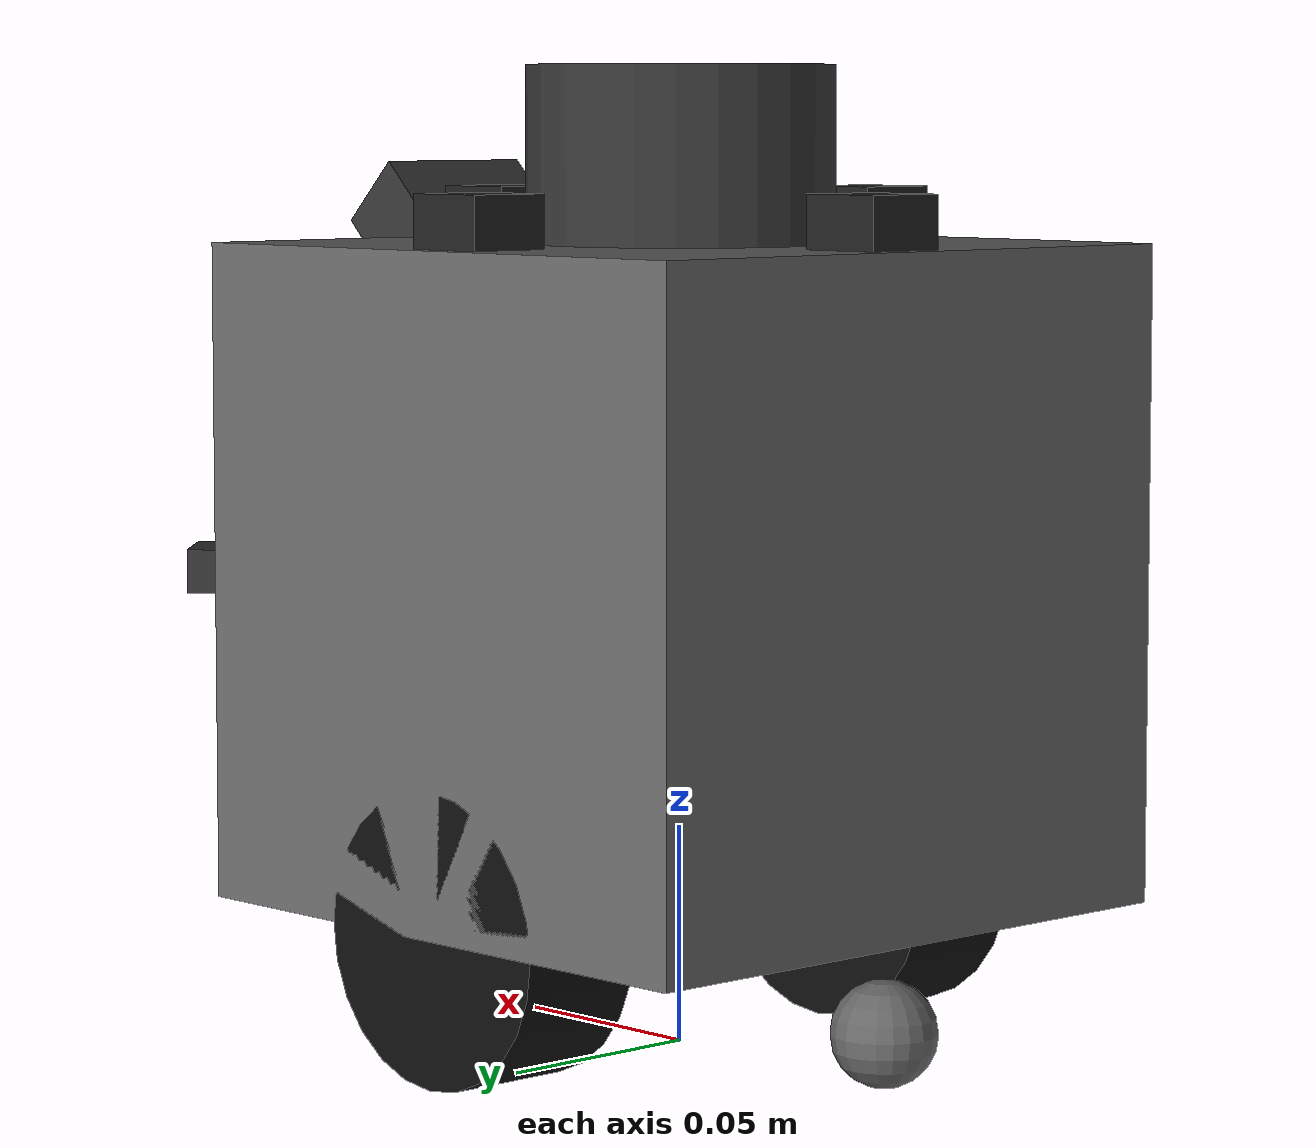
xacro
<?xml version="1.0"?>
<robot name="fenrir" xmlns:xacro="http://www.ros.org/wiki/xacro">

  <!--  Dimensions                                                     -->
  <xacro:property name="chassis_length" value="0.15"/>
  <xacro:property name="chassis_width"  value="0.15"/>
  <xacro:property name="chassis_height" value="0.15"/>
  <xacro:property name="chassis_mass"   value="1.0"/>       <!-- kg, estimate -->

  <xacro:property name="wheel_radius"        value="0.033"/>  <!-- m, spec; STL 34mm -->
  <xacro:property name="wheel_width"         value="0.030"/>  <!-- m, from wheel.STL -->
  <xacro:property name="wheel_mass"          value="0.05"/>    <!-- kg, estimate -->
  <xacro:property name="wheel_separation"    value="0.12"/>    <!-- m, interwheel -->
  <xacro:property name="wheel_axle_x_offset" value="0.0"/>     <!-- m, axle vs base origin -->
  <xacro:property name="wheel_axle_z_offset" value="0.0"/>     <!-- m, axle height vs base origin -->

  <xacro:property name="caster_radius" value="0.012"/>
  <xacro:property name="caster_mass"   value="0.01"/>      <!-- kg -->
  <xacro:property name="caster_front_x" value="0.065"/>    <!-- m, near front of 15cm chassis -->
  <xacro:property name="caster_rear_x"  value="-0.065"/>   <!-- m, near rear of 15cm chassis -->

  <!-- ===== Sensor placements (all relative to base_link) ===== -->
  <!-- LiDAR: XY-center, on TOP of chassis with a small mount stub. -->
  <xacro:property name="lidar_x"      value="0.0"/>
  <xacro:property name="lidar_y"      value="0.0"/>
  <xacro:property name="lidar_z"      value="${chassis_height + 0.020}"/>

  <!-- Camera: front-top of chassis, pitched 45° down toward floor.
       At z=chassis_height the camera sits at the top edge. Pitch = +π/4
       rotates the camera_link's +x (gz "forward") down by 45°. -->
  <xacro:property name="camera_x"     value="${chassis_length/2.0}"/>
  <xacro:property name="camera_z"     value="${chassis_height}"/>
  <xacro:property name="camera_pitch" value="${pi/4.0}"/>

  <xacro:property name="us_x"          value="${chassis_length/2.0 + 0.005}"/>
  <xacro:property name="us_z"          value="${chassis_height/2.0}"/>
  <xacro:property name="us_side_y"     value="${chassis_width/2.0 - 0.010}"/>  <!-- near chassis corner -->
  <xacro:property name="us_side_yaw"   value="${pi/4.0}"/>

  <xacro:property name="line_sensor_x" value="${caster_front_x}"/>
  <xacro:property name="line_sensor_z" value="-0.01"/>

  <!-- Encoder spec from MODERNIZATION_ROADMAP Appendix B. -->
  <xacro:property name="encoder_pulses_per_rev" value="576"/>

  <!--  Inertial helper macros                                         -->
  <xacro:macro name="box_inertia" params="mass x y z">
    <inertial>
      <mass value="${mass}"/>
      <inertia
        ixx="${mass*(y*y + z*z)/12.0}" ixy="0" ixz="0"
        iyy="${mass*(x*x + z*z)/12.0}" iyz="0"
        izz="${mass*(x*x + y*y)/12.0}"/>
    </inertial>
  </xacro:macro>

  <xacro:macro name="cylinder_inertia" params="mass radius length">
    <inertial>
      <mass value="${mass}"/>
      <inertia
        ixx="${mass*(3*radius*radius + length*length)/12.0}" ixy="0" ixz="0"
        iyy="${mass*(3*radius*radius + length*length)/12.0}" iyz="0"
        izz="${mass*radius*radius/2.0}"/>
    </inertial>
  </xacro:macro>

  <xacro:macro name="sphere_inertia" params="mass radius">
    <inertial>
      <mass value="${mass}"/>
      <inertia
        ixx="${2.0*mass*radius*radius/5.0}" ixy="0" ixz="0"
        iyy="${2.0*mass*radius*radius/5.0}" iyz="0"
        izz="${2.0*mass*radius*radius/5.0}"/>
    </inertial>
  </xacro:macro>

  <!--  base_link — chassis                                            -->
  <link name="base_footprint"/>
  <joint name="base_footprint_to_base_link" type="fixed">
    <parent link="base_footprint"/>
    <child  link="base_link"/>
    <origin xyz="0 0 ${wheel_radius}" rpy="0 0 0"/>
  </joint>

  <link name="base_link">
    <visual>
      <!-- shift up so chassis BOTTOM = base_link z=0 (axle plane). -->
      <origin xyz="0 0 ${chassis_height/2.0}" rpy="0 0 0"/>
      <geometry>
        <box size="${chassis_length} ${chassis_width} ${chassis_height}"/>
      </geometry>
      <material name="grey">
        <color rgba="0.4 0.4 0.4 1.0"/>
      </material>
    </visual>
    <collision>
      <origin xyz="0 0 ${chassis_height/2.0}" rpy="0 0 0"/>
      <geometry>
        <box size="${chassis_length} ${chassis_width} ${chassis_height}"/>
      </geometry>
    </collision>
    <!-- Inertial origin must sit at the chassis CoM, not at base_link. -->
    <inertial>
      <origin xyz="0 0 ${chassis_height/2.0}" rpy="0 0 0"/>
      <mass value="${chassis_mass}"/>
      <inertia
        ixx="${chassis_mass*(chassis_width*chassis_width + chassis_height*chassis_height)/12.0}" ixy="0" ixz="0"
        iyy="${chassis_mass*(chassis_length*chassis_length + chassis_height*chassis_height)/12.0}" iyz="0"
        izz="${chassis_mass*(chassis_length*chassis_length + chassis_width*chassis_width)/12.0}"/>
    </inertial>
  </link>

  <!--  Driven wheels (left, right)                                    -->
  <xacro:macro name="wheel" params="side reflect">
    <link name="${side}_wheel_link">
      <visual>
        <origin xyz="0 0 0" rpy="${pi/2.0} 0 0"/>
        <geometry>
          <cylinder radius="${wheel_radius}" length="${wheel_width}"/>
        </geometry>
        <material name="black">
          <color rgba="0.05 0.05 0.05 1.0"/>
        </material>
      </visual>
      <collision>
        <origin xyz="0 0 0" rpy="${pi/2.0} 0 0"/>
        <geometry>
          <cylinder radius="${wheel_radius}" length="${wheel_width}"/>
        </geometry>
      </collision>
      <xacro:cylinder_inertia mass="${wheel_mass}"
                              radius="${wheel_radius}" length="${wheel_width}"/>
    </link>

    <joint name="${side}_wheel_joint" type="continuous">
      <parent link="base_link"/>
      <child  link="${side}_wheel_link"/>
      <origin xyz="${wheel_axle_x_offset} ${reflect*wheel_separation/2.0} ${wheel_axle_z_offset}"
              rpy="0 0 0"/>
      <axis xyz="0 1 0"/>
      <dynamics damping="0.001" friction="0.0"/>
    </joint>

    <gazebo reference="${side}_wheel_link">
      <mu1>1.0</mu1>
      <mu2>1.0</mu2>
    </gazebo>
  </xacro:macro>

  <xacro:wheel side="left"  reflect="1"/>
  <xacro:wheel side="right" reflect="-1"/>

  <!--  Casters (front + rear) — passive stabilizers                  -->
  <xacro:macro name="caster" params="suffix x">
    <link name="caster_${suffix}_link">
      <visual>
        <geometry><sphere radius="${caster_radius}"/></geometry>
        <material name="grey"/>
      </visual>
      <collision>
        <geometry><sphere radius="${caster_radius}"/></geometry>
      </collision>
      <xacro:sphere_inertia mass="${caster_mass}" radius="${caster_radius}"/>
    </link>
    <joint name="caster_${suffix}_joint" type="fixed">
      <parent link="base_link"/>
      <child  link="caster_${suffix}_link"/>
      <origin xyz="${x} 0 ${-(wheel_radius - caster_radius)}" rpy="0 0 0"/>
    </joint>
    <gazebo reference="caster_${suffix}_link">
      <mu1>0.05</mu1>
      <mu2>0.05</mu2>
    </gazebo>
  </xacro:macro>

  <xacro:caster suffix="front" x="${caster_front_x}"/>
  <xacro:caster suffix="rear"  x="${caster_rear_x}"/>

  <!--  Lidar (RPLiDAR A1 — 360° 2D scan)                             -->
  <link name="lidar_link">
    <visual>
      <geometry>
        <cylinder radius="0.035" length="0.04"/>
      </geometry>
      <material name="dark_grey">
        <color rgba="0.2 0.2 0.2 1.0"/>
      </material>
    </visual>
    <collision>
      <geometry>
        <cylinder radius="0.035" length="0.04"/>
      </geometry>
    </collision>
    <xacro:cylinder_inertia mass="0.1" radius="0.035" length="0.04"/>
  </link>
  <joint name="lidar_joint" type="fixed">
    <parent link="base_link"/>
    <child  link="lidar_link"/>
    <origin xyz="${lidar_x} ${lidar_y} ${lidar_z}" rpy="0 0 0"/>
  </joint>

  <gazebo reference="lidar_link">
    <sensor name="rplidar_a1" type="gpu_lidar">
      <topic>lidar</topic>
      <update_rate>12</update_rate>  <!-- Hz; matches real RPLiDAR A1 -->
      <gz_frame_id>lidar_link</gz_frame_id>
      <lidar>
        <scan>
          <horizontal>
            <samples>360</samples>
            <resolution>1</resolution>
            <min_angle>${-pi}</min_angle>
            <max_angle>${pi}</max_angle>
          </horizontal>
        </scan>
        <range>
          <min>0.15</min>
          <max>12.0</max>
          <resolution>0.01</resolution>
        </range>
        <noise>
          <type>gaussian</type>
          <mean>0.0</mean>
          <stddev>0.01</stddev>
        </noise>
      </lidar>
      <always_on>true</always_on>
      <visualize>false</visualize>
    </sensor>
  </gazebo>

  <!--  Camera (640x480 @ 30 Hz, bgr8 — matches Appendix B)            -->
  <link name="camera_link">
    <visual>
      <geometry>
        <box size="0.02 0.04 0.03"/>
      </geometry>
      <material name="dark_grey"/>
    </visual>
    <collision>
      <geometry>
        <box size="0.02 0.04 0.03"/>
      </geometry>
    </collision>
    <xacro:box_inertia mass="0.05" x="0.02" y="0.04" z="0.03"/>
  </link>
  <joint name="camera_joint" type="fixed">
    <parent link="base_link"/>
    <child  link="camera_link"/>
    <!-- Front-top of chassis, pitched 45° down toward the ground. -->
    <origin xyz="${camera_x} 0 ${camera_z}" rpy="0 ${camera_pitch} 0"/>
  </joint>

  <link name="camera_optical_frame"/>
  <joint name="camera_optical_joint" type="fixed">
    <parent link="camera_link"/>
    <child  link="camera_optical_frame"/>
    <origin xyz="0 0 0" rpy="${-pi/2.0} 0 ${-pi/2.0}"/>
  </joint>

  <gazebo reference="camera_link">
    <sensor name="rgb_camera" type="camera">
      <topic>camera</topic>
      <gz_frame_id>camera_optical_frame</gz_frame_id>
      <update_rate>30</update_rate>
      <camera>
        <horizontal_fov>1.047</horizontal_fov>  <!-- ~60 deg, refine -->
        <image>
          <width>640</width>
          <height>480</height>
          <format>R8G8B8</format>
        </image>
        <clip>
          <near>0.05</near>
          <far>10.0</far>
        </clip>
      </camera>
      <always_on>true</always_on>
      <visualize>false</visualize>
    </sensor>
  </gazebo>

  <!--  IMU (MPU6050 — 100 Hz)                                         -->
  <link name="imu_link"/>
  <joint name="imu_joint" type="fixed">
    <parent link="base_link"/>
    <child  link="imu_link"/>
    <origin xyz="0 0 0.01" rpy="0 0 0"/>
  </joint>
  <gazebo reference="imu_link">
    <sensor name="imu_sensor" type="imu">
      <topic>imu</topic>
      <gz_frame_id>imu_link</gz_frame_id>
      <update_rate>100</update_rate>
      <imu>
        <angular_velocity>
          <x><noise type="gaussian"><stddev>0.005</stddev></noise></x>
          <y><noise type="gaussian"><stddev>0.005</stddev></noise></y>
          <z><noise type="gaussian"><stddev>0.005</stddev></noise></z>
        </angular_velocity>
        <linear_acceleration>
          <x><noise type="gaussian"><stddev>0.02</stddev></noise></x>
          <y><noise type="gaussian"><stddev>0.02</stddev></noise></y>
          <z><noise type="gaussian"><stddev>0.02</stddev></noise></z>
        </linear_acceleration>
      </imu>
      <always_on>true</always_on>
    </sensor>
  </gazebo>

  <!--  Ultrasounds (3× SRF-05-like)                                   -->
  <!--  Forward, +45° left, -45° right. All at mid-chassis height.    -->
  <!--  Gazebo Harmonic has no native sonar primitive, so we model    -->
  <!--  each one as a narrow gpu_lidar fan spanning ±30°. The         -->
  <!--  ultrasound_bridge node takes the MINIMUM distance across the  -->
  <!--  fan per sensor — mirroring real-US echo behaviour: the sensor -->
  <!--  reports the closest reflector inside its beam. Real-spec       -->
  <!--  range 2 cm — 255 cm, per Adam 2026-05-27.                      -->
  <!--  The bridge aggregates the three /us_* topics into a            -->
  <!--  std_msgs/UInt8MultiArray of 3 distances in cm, matching the   -->
  <!--  /bpc_prp_robot/ultrasounds contract in Appendix B.            -->
  <xacro:property name="us_half_fov"    value="${pi/6.0}"/>
  <xacro:property name="us_fan_samples" value="31"/>          <!-- ≈2°/ray -->

  <xacro:macro name="ultrasound" params="suffix x y yaw">
    <!-- Sensor link is a 2x2x1 cm visual marker only — no collision so
         the sensor's own model does not occlude the raycast. -->
    <link name="us_${suffix}_link">
      <visual>
        <geometry><box size="0.02 0.02 0.01"/></geometry>
        <material name="dark_grey"/>
      </visual>
      <xacro:box_inertia mass="0.005" x="0.02" y="0.02" z="0.01"/>
    </link>
    <joint name="us_${suffix}_joint" type="fixed">
      <parent link="base_link"/>
      <child  link="us_${suffix}_link"/>
      <origin xyz="${x} ${y} ${us_z}" rpy="0 0 ${yaw}"/>
    </joint>

    <gazebo reference="us_${suffix}_link">
      <sensor name="ultrasound_${suffix}" type="gpu_lidar">
        <topic>us_${suffix}</topic>
        <gz_frame_id>us_${suffix}_link</gz_frame_id>
        <update_rate>5</update_rate>  <!-- 5 Hz per Appendix B -->
        <lidar>
          <scan>
            <horizontal>
              <samples>${us_fan_samples}</samples>
              <min_angle>${-us_half_fov}</min_angle>
              <max_angle>${us_half_fov}</max_angle>
            </horizontal>
          </scan>
          <range>
            <min>0.02</min>
            <max>2.55</max>  <!-- 255 cm max (UInt8 cap) -->
            <resolution>0.01</resolution>
          </range>
          <noise>
            <type>gaussian</type>
            <mean>0.0</mean>
            <stddev>0.005</stddev>
          </noise>
        </lidar>
        <always_on>true</always_on>
      </sensor>
    </gazebo>
  </xacro:macro>

  <xacro:ultrasound suffix="front" x="${us_x}"
                    y="0"                  yaw="0"/>
  <xacro:ultrasound suffix="left"  x="${us_x}"
                    y="${us_side_y}"       yaw="${us_side_yaw}"/>
  <xacro:ultrasound suffix="right" x="${us_x}"
                    y="${-us_side_y}"      yaw="${-us_side_yaw}"/>

  <!--  Line sensors (T4.2)                                            -->
  <!--  The real Fenrir has 2 analog IR line sensors pointing down.   -->
  <!--  No native Gazebo "line sensor" exists, so we simulate them as -->
  <!--  a small downward-facing camera that the line_sensor_bridge    -->
  <!--  node samples at two pixel positions. The bridge publishes      -->
  <!--  /bpc_prp_robot/line_sensors as UInt16MultiArray[2] in the      -->
  <!--  0..1023 range, matching the real ADC. Polarity: white floor   -->
  <!--  -> high reading, black line -> low reading (linear in pixel    -->
  <!--  brightness).                                                   -->
  <!--  The camera image itself is bridged as /internal/floor_camera; -->
  <!--  students should not subscribe to it directly.                  -->
  <link name="line_sensor_link"/>
  <joint name="line_sensor_joint" type="fixed">
    <parent link="base_link"/>
    <child  link="line_sensor_link"/>
    <origin xyz="${line_sensor_x} 0 ${line_sensor_z}" rpy="0 0 0"/>
  </joint>

  <gazebo reference="line_sensor_link">
    <sensor name="floor_camera" type="camera">
      <topic>internal/floor_camera</topic>
      <gz_frame_id>line_sensor_link</gz_frame_id>
      <update_rate>30</update_rate>
      <!-- Rotate the sensor so its optical +x (camera forward in gz)
           points straight down (-z of line_sensor_link). -->
      <pose>0 0 0 0 ${pi/2.0} 0</pose>
      <camera>
        <horizontal_fov>1.5708</horizontal_fov>  <!-- 90 deg -->
        <image>
          <width>64</width>
          <height>32</height>
          <format>R8G8B8</format>
        </image>
        <clip>
          <near>0.001</near>
          <far>0.5</far>
        </clip>
      </camera>
      <always_on>true</always_on>
      <visualize>false</visualize>
    </sensor>
  </gazebo>

  <!--  RGB status LEDs (4×, on top: front / right / back / left)      -->
  <!--  Real Fenrir carries a 4-element NeoPixel strip on the chassis  -->
  <!--  top, driven by /bpc_prp_robot/rgb_leds (UInt8MultiArray, 12    -->
  <!--  values = 4 × RGB, each 0–255). In sim the 4 LEDs sit at the    -->
  <!--  four edge midpoints of the top plate so each faces a compass   -->
  <!--  direction; the data layout is left-to-right per LED:           -->
  <!--      data[0:3]  -> front  (+x)                                   -->
  <!--      data[3:6]  -> right  (-y)                                   -->
  <!--      data[6:9]  -> back   (-x)                                   -->
  <!--      data[9:12] -> left   (+y)                                   -->
  <!--  These links give the LEDs physical presence in the Gazebo      -->
  <!--  scene. Live colour is rendered by the rgb_leds_bridge node as   -->
  <!--  RViz markers overlaid at these same positions (gz-sim 8.11 has  -->
  <!--  no runtime material-colour system).                            -->
  <xacro:property name="led_size"   value="0.020"/>
  <xacro:property name="led_height" value="0.012"/>
  <xacro:property name="led_offset" value="0.060"/>   <!-- centre -> edge -->
  <xacro:property name="led_z"      value="${chassis_height + led_height/2.0}"/>

  <xacro:macro name="rgb_led" params="name x y color:='0.12 0.12 0.12 1.0'">
    <link name="led_${name}_link">
      <visual name="led_${name}">
        <geometry><box size="${led_size} ${led_size} ${led_height}"/></geometry>
        <material name="led_${name}_mat">
          <color rgba="${color}"/>
        </material>
      </visual>
      <xacro:box_inertia mass="0.002" x="${led_size}" y="${led_size}" z="${led_height}"/>
    </link>
    <joint name="led_${name}_joint" type="fixed">
      <parent link="base_link"/>
      <child  link="led_${name}_link"/>
      <origin xyz="${x} ${y} ${led_z}" rpy="0 0 0"/>
    </joint>
    <!-- Keep the LED as its own link/visual (do not lump into base_link)
         so the visual keeps a clean, matchable name in Gazebo. -->
    <gazebo reference="led_${name}_joint">
      <preserveFixedJoint>true</preserveFixedJoint>
      <disableFixedJointLumping>true</disableFixedJointLumping>
    </gazebo>
  </xacro:macro>

  <xacro:rgb_led name="front" x="${led_offset}"  y="0"/>
  <xacro:rgb_led name="right" x="0"              y="${-led_offset}"/>
  <xacro:rgb_led name="back"  x="${-led_offset}" y="0"/>
  <xacro:rgb_led name="left"  x="0"              y="${led_offset}"/>

  <!--  Diff-drive system plugin (Gazebo Harmonic gz::sim::systems)    -->
  <!--  Publishes the gz topic /model/fenrir/cmd_vel <- Twist input.   -->
  <!--  The motor_bridge node converts /bpc_prp_robot/set_motor_speeds -->
  <!--  (uint8[2], 127=stop, 1s watchdog) into that Twist.             -->
  <!--  Also publishes joint states for the wheels (encoder source).   -->
  <!--
    Model-level Gazebo plugins. World-level systems (Sensors, Physics,
    SceneBroadcaster, UserCommands, Imu) live in worlds/*.sdf instead.
  -->
  <gazebo>
    <plugin
      filename="gz-sim-diff-drive-system"
      name="gz::sim::systems::DiffDrive">
      <left_joint>left_wheel_joint</left_joint>
      <right_joint>right_wheel_joint</right_joint>
      <wheel_separation>${wheel_separation}</wheel_separation>
      <wheel_radius>${wheel_radius}</wheel_radius>
      <odom_publish_frequency>50</odom_publish_frequency>
      <topic>cmd_vel</topic>
      <odom_topic>odom</odom_topic>
      <frame_id>odom</frame_id>
      <child_frame_id>base_footprint</child_frame_id>
      <tf_topic>tf</tf_topic>
    </plugin>

    <plugin
      filename="gz-sim-joint-state-publisher-system"
      name="gz::sim::systems::JointStatePublisher">
      <topic>joint_states</topic>
      <joint_name>left_wheel_joint</joint_name>
      <joint_name>right_wheel_joint</joint_name>
    </plugin>

    <plugin filename="LedMaterialColor" name="fenrir_sim::LedMaterialColor">
      <topic>/led_colors</topic>
    </plugin>
  </gazebo>

</robot>
